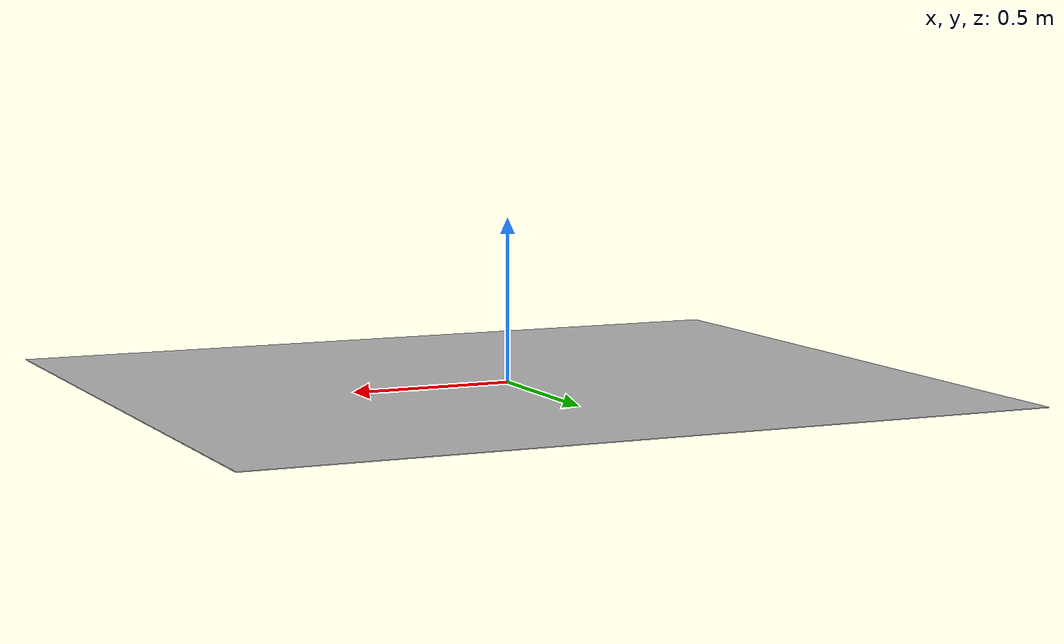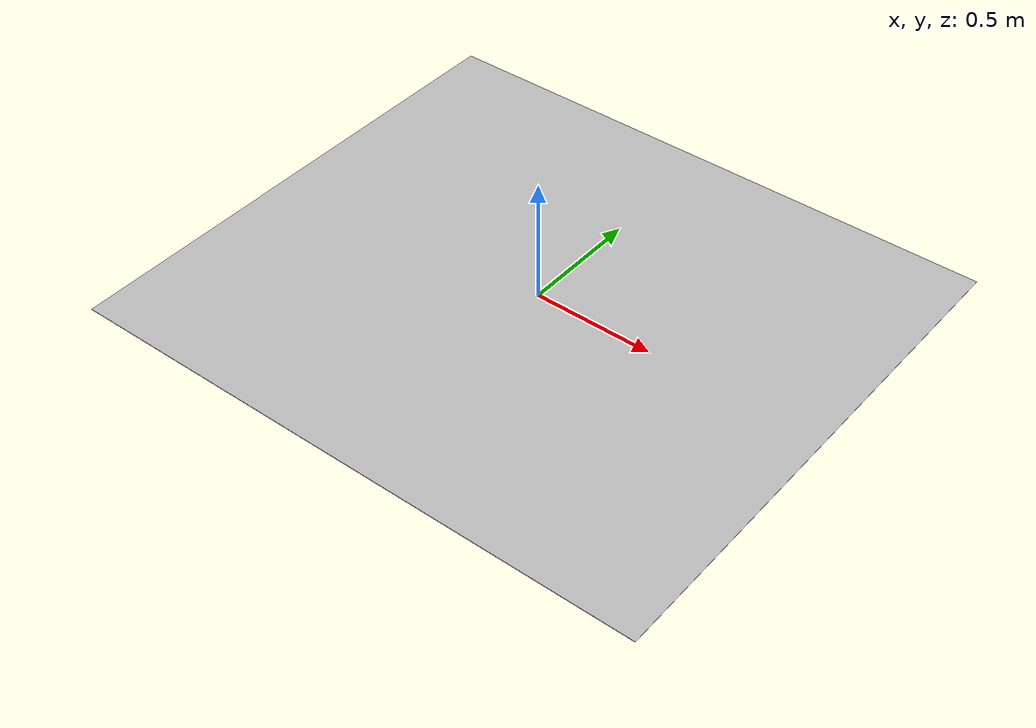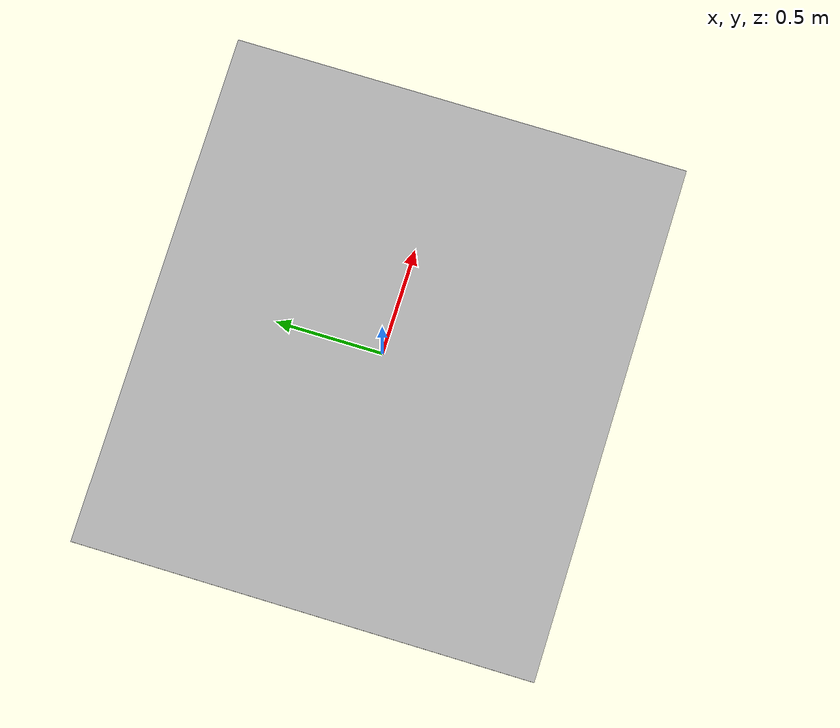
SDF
<?xml version="1.0" ?>
<sdf version="1.5">
    <model name="arena_ground_2">
        <static>true</static>
        <link name="link">
            <collision name="collision">
                <geometry>
                    <plane>
                        <normal>0 0 1</normal>
                        <size>100 100</size>
                    </plane>
                </geometry>
                <surface>
                    <friction>
                        <ode>
                            <mu>100</mu>
                            <mu2>50</mu2>
                        </ode>
                    </friction>
                </surface>
            </collision>
            <visual name="visual">
                <cast_shadows>false</cast_shadows>
                <geometry>
                    <plane>
                        <normal>0 0 1</normal>
                        <size>2.4384 2.1336</size>
                    </plane>
                </geometry>
                <material>
                    <script>
                        <uri>model://arena_ground_2/materials/scripts</uri>
                        <uri>model://arena_ground_2/materials/textures</uri>
                        <name>arena/Image</name>
                    </script>
                </material>
            </visual>
        </link>
    </model>
</sdf>
